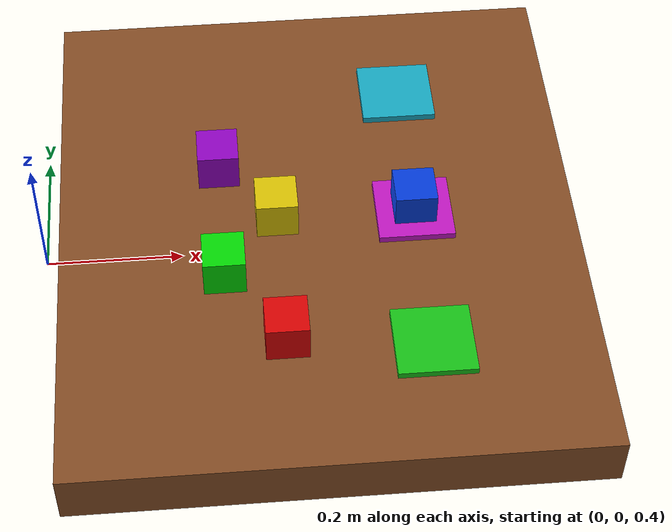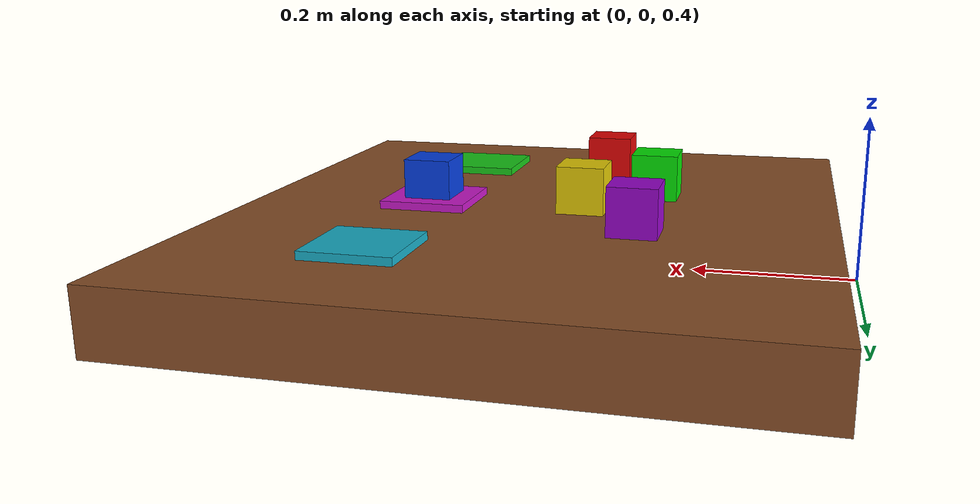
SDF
<?xml version="1.0" ?>
<sdf version="1.7">
<world name="ur3_llm_task_world">
<physics name="default_physics" type="ode">
  <max_step_size>0.001</max_step_size>
  <real_time_factor>1</real_time_factor>
</physics>

<plugin filename="ignition-gazebo-physics-system" name="ignition::gazebo::systems::Physics"/>
<plugin filename="ignition-gazebo-user-commands-system" name="ignition::gazebo::systems::UserCommands"/>
<plugin filename="ignition-gazebo-scene-broadcaster-system" name="ignition::gazebo::systems::SceneBroadcaster"/>
<plugin filename="ignition-gazebo-sensors-system" name="ignition::gazebo::systems::Sensors">
  <render_engine>ogre2</render_engine>
</plugin>

<light type="directional" name="sun">
  <pose>0 0 4 0 0 0</pose>
  <diffuse>0.8 0.8 0.8 1</diffuse>
  <direction>-0.4 0.3 -1</direction>
</light>

<model name="overhead_camera">
  <static>true</static>
  <pose>0.44 0 1.25 0 1.5707963 0</pose>
  <link name="camera_link">
    <sensor name="overhead_cam" type="camera">
      <topic>/camera/image_raw</topic>
      <camera>
        <horizontal_fov>1.1</horizontal_fov>
        <image>
          <width>640</width>
          <height>480</height>
          <format>R8G8B8</format>
        </image>
        <clip>
          <near>0.1</near>
          <far>3.0</far>
        </clip>
      </camera>
      <always_on>1</always_on>
      <update_rate>15</update_rate>
      <visualize>true</visualize>
    </sensor>
  </link>
</model>

<model name="worktable">
  <static>true</static>
  <pose>0.40 0 0.43 0 0 0</pose>
  <link name="table_link">
    <collision name="collision">
      <geometry><box><size>0.75 0.85 0.08</size></box></geometry>
    </collision>
    <visual name="visual">
      <geometry><box><size>0.75 0.85 0.08</size></box></geometry>
      <material>
        <ambient>0.35 0.22 0.12 1</ambient>
        <diffuse>0.55 0.32 0.16 1</diffuse>
      </material>
    </visual>
  </link>
</model>

<model name="red_cube">
  <static>false</static>
  <pose>0.34 -0.22 0.50 0 0 0</pose>
  <link name="link">
    <inertial><mass>0.10</mass><inertia><ixx>0.00006</ixx><iyy>0.00006</iyy><izz>0.00006</izz></inertia></inertial>
    <collision name="c">
      <geometry><box><size>0.06 0.06 0.06</size></box></geometry>
      <surface><friction><ode><mu>3.0</mu><mu2>3.0</mu2></ode></friction></surface>
    </collision>
    <visual name="v">
      <geometry><box><size>0.06 0.06 0.06</size></box></geometry>
      <material><ambient>0.8 0.02 0.02 1</ambient><diffuse>0.9 0.02 0.02 1</diffuse></material>
    </visual>
  </link>
</model>

<model name="yellow_cube">
  <static>false</static>
  <pose>0.34 0 0.50 0 0 0</pose>
  <link name="link">
    <inertial><mass>0.10</mass><inertia><ixx>0.00006</ixx><iyy>0.00006</iyy><izz>0.00006</izz></inertia></inertial>
    <collision name="c">
      <geometry><box><size>0.06 0.06 0.06</size></box></geometry>
      <surface><friction><ode><mu>3.0</mu><mu2>3.0</mu2></ode></friction></surface>
    </collision>
    <visual name="v">
      <geometry><box><size>0.06 0.06 0.06</size></box></geometry>
      <material><ambient>0.8 0.7 0.02 1</ambient><diffuse>0.9 0.8 0.02 1</diffuse></material>
    </visual>
  </link>
</model>

<model name="blue_cube">
  <static>false</static>
  <pose>0.54 0 0.50 0 0 0</pose>
  <link name="link">
    <inertial><mass>0.10</mass><inertia><ixx>0.00006</ixx><iyy>0.00006</iyy><izz>0.00006</izz></inertia></inertial>
    <collision name="c">
      <geometry><box><size>0.06 0.06 0.06</size></box></geometry>
      <surface><friction><ode><mu>3.0</mu><mu2>3.0</mu2></ode></friction></surface>
    </collision>
    <visual name="v">
      <geometry><box><size>0.06 0.06 0.06</size></box></geometry>
      <material><ambient>0.02 0.18 0.8 1</ambient><diffuse>0.02 0.25 0.9 1</diffuse></material>
    </visual>
  </link>
</model>

<model name="green_cube">
  <static>false</static>
  <pose>0.26 -0.10 0.50 0 0 0</pose>
  <link name="link">
    <inertial><mass>0.10</mass><inertia><ixx>0.00006</ixx><iyy>0.00006</iyy><izz>0.00006</izz></inertia></inertial>
    <collision name="c">
      <geometry><box><size>0.06 0.06 0.06</size></box></geometry>
      <surface><friction><ode><mu>3.0</mu><mu2>3.0</mu2></ode></friction></surface>
    </collision>
    <visual name="v">
      <geometry><box><size>0.06 0.06 0.06</size></box></geometry>
      <material><ambient>0.02 0.8 0.02 1</ambient><diffuse>0.02 0.9 0.02 1</diffuse></material>
    </visual>
  </link>
</model>

<model name="purple_cube">
  <static>false</static>
  <pose>0.26 0.10 0.50 0 0 0</pose>
  <link name="link">
    <inertial><mass>0.10</mass><inertia><ixx>0.00006</ixx><iyy>0.00006</iyy><izz>0.00006</izz></inertia></inertial>
    <collision name="c">
      <geometry><box><size>0.06 0.06 0.06</size></box></geometry>
      <surface><friction><ode><mu>3.0</mu><mu2>3.0</mu2></ode></friction></surface>
    </collision>
    <visual name="v">
      <geometry><box><size>0.06 0.06 0.06</size></box></geometry>
      <material><ambient>0.6 0.02 0.8 1</ambient><diffuse>0.6 0.02 0.8 1</diffuse></material>
    </visual>
  </link>
</model>

<model name="zone_a">
  <static>true</static>
  <pose>0.54 -0.24 0.475 0 0 0</pose>
  <link name="link">
    <visual name="v">
      <geometry><box><size>0.11 0.11 0.01</size></box></geometry>
      <material><ambient>0.1 0.8 0.1 1</ambient><diffuse>0.1 0.8 0.1 1</diffuse></material>
    </visual>
  </link>
</model>

<model name="zone_b">
  <static>true</static>
  <pose>0.54 0 0.475 0 0 0</pose>
  <link name="link">
    <visual name="v">
      <geometry><box><size>0.11 0.11 0.01</size></box></geometry>
      <material><ambient>0.8 0.1 0.8 1</ambient><diffuse>0.8 0.1 0.8 1</diffuse></material>
    </visual>
  </link>
</model>

<model name="zone_c">
  <static>true</static>
  <pose>0.54 0.24 0.475 0 0 0</pose>
  <link name="link">
    <visual name="v">
      <geometry><box><size>0.11 0.11 0.01</size></box></geometry>
      <material><ambient>0.1 0.7 0.8 1</ambient><diffuse>0.1 0.7 0.8 1</diffuse></material>
    </visual>
  </link>
</model>
</world>
</sdf>
